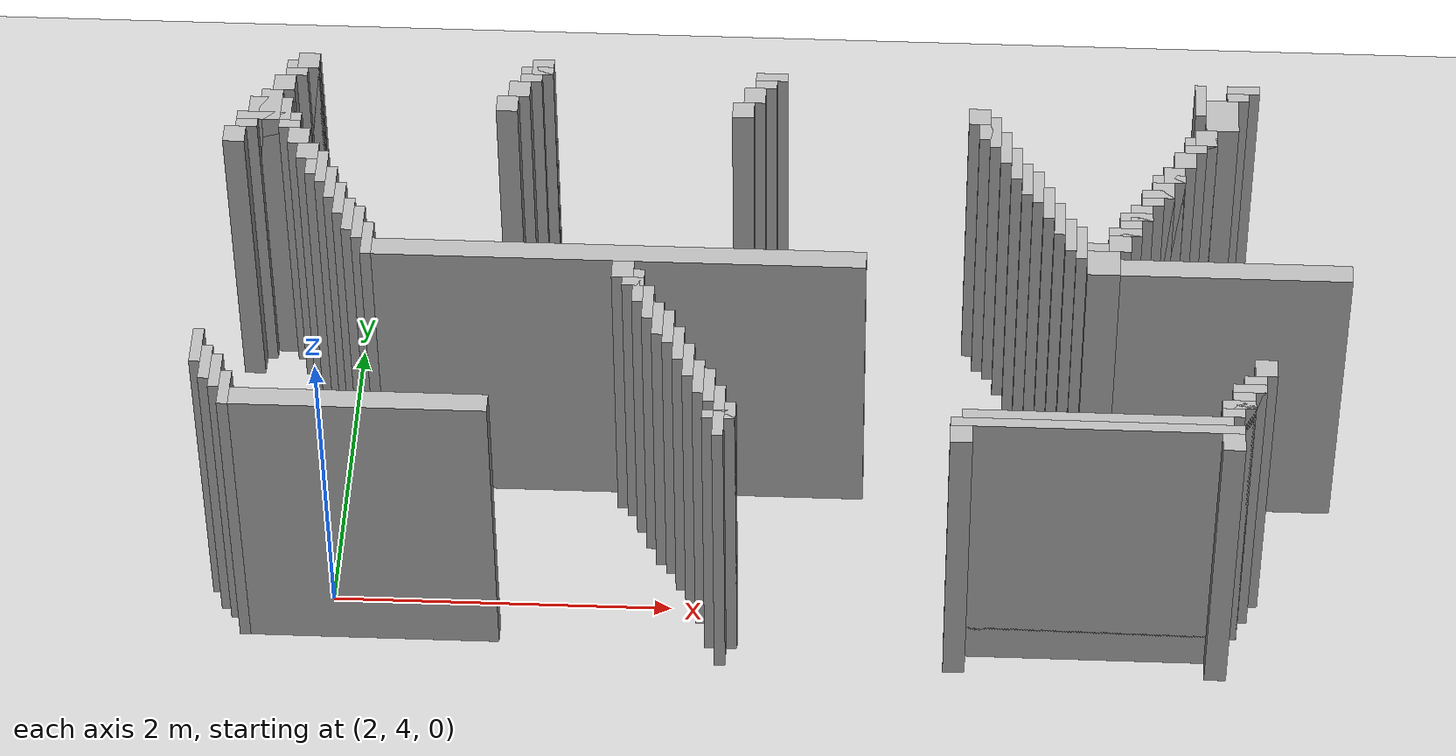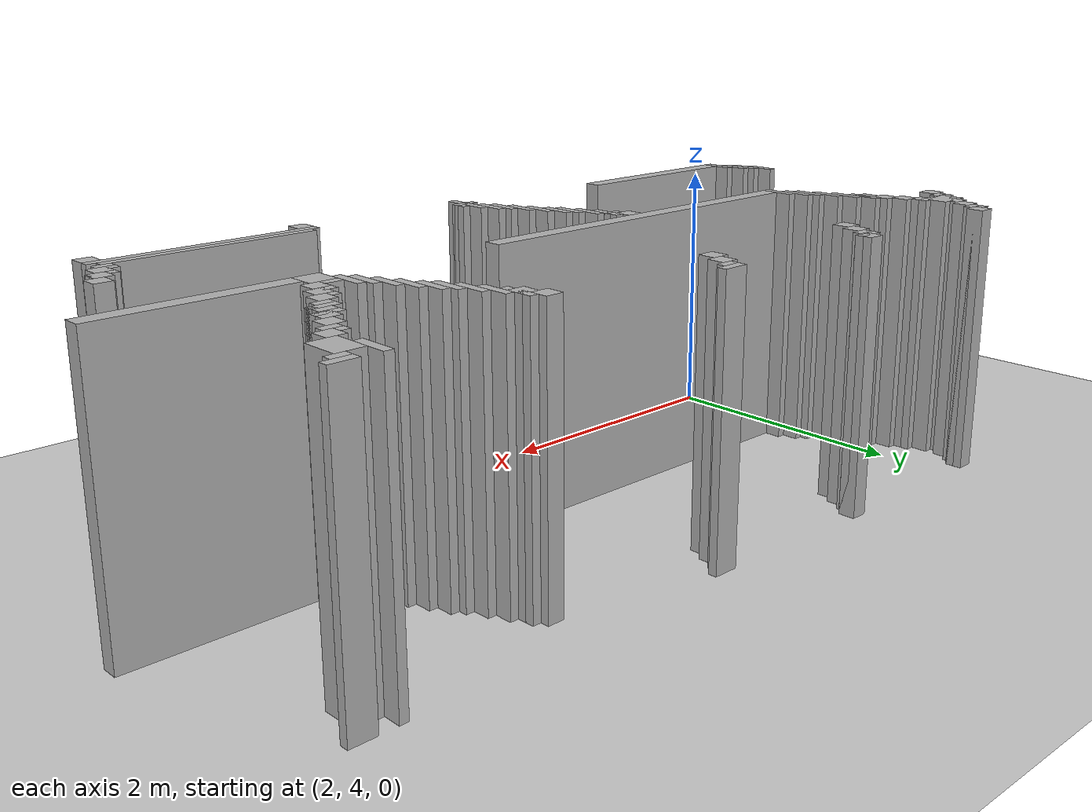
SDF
<sdf version="1.6">
 <world name="slam_world">
  <model name="ground_plane">
   <static>true</static>
   <link name="link">
    <collision name="collision">
     <geometry><plane><normal>0 0 1</normal><size>100 100</size></plane></geometry>
    </collision>
    <visual name="visual">
     <geometry><plane><normal>0 0 1</normal><size>100 100</size></plane></geometry>
     <material>
      <ambient>0.8 0.8 0.8 1</ambient>
      <diffuse>0.8 0.8 0.8 1</diffuse>
      <specular>0.8 0.8 0.8 1</specular>
     </material>
    </visual>
   </link>
  </model>
  <model name="wall_1665">
   <static>true</static>
   <pose>1.7234042553191489 6.51063829787234 1.0 0 0 0</pose>
   <link name="link">
    <collision name="collision">
     <geometry><box><size>0.1276595744680851 0.1276595744680851 2.0</size></box></geometry>
    </collision>
    <visual name="visual">
     <geometry><box><size>0.1276595744680851 0.1276595744680851 2.0</size></box></geometry>
     <material><ambient>0.5 0.5 0.5 1</ambient><diffuse>0.7 0.7 0.7 1</diffuse></material>
    </visual>
   </link>
  </model>
  <model name="wall_1666">
   <static>true</static>
   <pose>3.127659574468085 6.51063829787234 1.0 0 0 0</pose>
   <link name="link">
    <collision name="collision">
     <geometry><box><size>0.1276595744680851 0.1276595744680851 2.0</size></box></geometry>
    </collision>
    <visual name="visual">
     <geometry><box><size>0.1276595744680851 0.1276595744680851 2.0</size></box></geometry>
     <material><ambient>0.5 0.5 0.5 1</ambient><diffuse>0.7 0.7 0.7 1</diffuse></material>
    </visual>
   </link>
  </model>
  <model name="wall_1672">
   <static>true</static>
   <pose>1.6914893617021276 6.478723404255319 1.0 0 0 0</pose>
   <link name="link">
    <collision name="collision">
     <geometry><box><size>0.19148936170212766 0.06382978723404255 2.0</size></box></geometry>
    </collision>
    <visual name="visual">
     <geometry><box><size>0.19148936170212766 0.06382978723404255 2.0</size></box></geometry>
     <material><ambient>0.5 0.5 0.5 1</ambient><diffuse>0.7 0.7 0.7 1</diffuse></material>
    </visual>
   </link>
  </model>
  <model name="wall_1673">
   <static>true</static>
   <pose>3.095744680851064 6.478723404255319 1.0 0 0 0</pose>
   <link name="link">
    <collision name="collision">
     <geometry><box><size>0.19148936170212766 0.06382978723404255 2.0</size></box></geometry>
    </collision>
    <visual name="visual">
     <geometry><box><size>0.19148936170212766 0.06382978723404255 2.0</size></box></geometry>
     <material><ambient>0.5 0.5 0.5 1</ambient><diffuse>0.7 0.7 0.7 1</diffuse></material>
    </visual>
   </link>
  </model>
  <model name="wall_1674">
   <static>true</static>
   <pose>4.5 6.478723404255319 1.0 0 0 0</pose>
   <link name="link">
    <collision name="collision">
     <geometry><box><size>0.19148936170212766 0.06382978723404255 2.0</size></box></geometry>
    </collision>
    <visual name="visual">
     <geometry><box><size>0.19148936170212766 0.06382978723404255 2.0</size></box></geometry>
     <material><ambient>0.5 0.5 0.5 1</ambient><diffuse>0.7 0.7 0.7 1</diffuse></material>
    </visual>
   </link>
  </model>
  <model name="wall_1675">
   <static>true</static>
   <pose>7.053191489361701 6.382978723404255 1.0 0 0 0</pose>
   <link name="link">
    <collision name="collision">
     <geometry><box><size>0.06382978723404255 0.2553191489361702 2.0</size></box></geometry>
    </collision>
    <visual name="visual">
     <geometry><box><size>0.06382978723404255 0.2553191489361702 2.0</size></box></geometry>
     <material><ambient>0.5 0.5 0.5 1</ambient><diffuse>0.7 0.7 0.7 1</diffuse></material>
    </visual>
   </link>
  </model>
  <model name="wall_1676">
   <static>true</static>
   <pose>7.3085106382978715 6.478723404255319 1.0 0 0 0</pose>
   <link name="link">
    <collision name="collision">
     <geometry><box><size>0.19148936170212766 0.06382978723404255 2.0</size></box></geometry>
    </collision>
    <visual name="visual">
     <geometry><box><size>0.19148936170212766 0.06382978723404255 2.0</size></box></geometry>
     <material><ambient>0.5 0.5 0.5 1</ambient><diffuse>0.7 0.7 0.7 1</diffuse></material>
    </visual>
   </link>
  </model>
  <model name="wall_1681">
   <static>true</static>
   <pose>1.6595744680851063 6.414893617021276 1.0 0 0 0</pose>
   <link name="link">
    <collision name="collision">
     <geometry><box><size>0.1276595744680851 0.06382978723404255 2.0</size></box></geometry>
    </collision>
    <visual name="visual">
     <geometry><box><size>0.1276595744680851 0.06382978723404255 2.0</size></box></geometry>
     <material><ambient>0.5 0.5 0.5 1</ambient><diffuse>0.7 0.7 0.7 1</diffuse></material>
    </visual>
   </link>
  </model>
  <model name="wall_1682">
   <static>true</static>
   <pose>3.0638297872340425 6.414893617021276 1.0 0 0 0</pose>
   <link name="link">
    <collision name="collision">
     <geometry><box><size>0.1276595744680851 0.06382978723404255 2.0</size></box></geometry>
    </collision>
    <visual name="visual">
     <geometry><box><size>0.1276595744680851 0.06382978723404255 2.0</size></box></geometry>
     <material><ambient>0.5 0.5 0.5 1</ambient><diffuse>0.7 0.7 0.7 1</diffuse></material>
    </visual>
   </link>
  </model>
  <model name="wall_1683">
   <static>true</static>
   <pose>4.468085106382978 6.414893617021276 1.0 0 0 0</pose>
   <link name="link">
    <collision name="collision">
     <geometry><box><size>0.1276595744680851 0.06382978723404255 2.0</size></box></geometry>
    </collision>
    <visual name="visual">
     <geometry><box><size>0.1276595744680851 0.06382978723404255 2.0</size></box></geometry>
     <material><ambient>0.5 0.5 0.5 1</ambient><diffuse>0.7 0.7 0.7 1</diffuse></material>
    </visual>
   </link>
  </model>
  <model name="wall_1684">
   <static>true</static>
   <pose>7.276595744680851 6.414893617021276 1.0 0 0 0</pose>
   <link name="link">
    <collision name="collision">
     <geometry><box><size>0.1276595744680851 0.06382978723404255 2.0</size></box></geometry>
    </collision>
    <visual name="visual">
     <geometry><box><size>0.1276595744680851 0.06382978723404255 2.0</size></box></geometry>
     <material><ambient>0.5 0.5 0.5 1</ambient><diffuse>0.7 0.7 0.7 1</diffuse></material>
    </visual>
   </link>
  </model>
  <model name="wall_1688">
   <static>true</static>
   <pose>1.5957446808510638 6.319148936170213 1.0 0 0 0</pose>
   <link name="link">
    <collision name="collision">
     <geometry><box><size>0.1276595744680851 0.1276595744680851 2.0</size></box></geometry>
    </collision>
    <visual name="visual">
     <geometry><box><size>0.1276595744680851 0.1276595744680851 2.0</size></box></geometry>
     <material><ambient>0.5 0.5 0.5 1</ambient><diffuse>0.7 0.7 0.7 1</diffuse></material>
    </visual>
   </link>
  </model>
  <model name="wall_1689">
   <static>true</static>
   <pose>2.9999999999999996 6.319148936170213 1.0 0 0 0</pose>
   <link name="link">
    <collision name="collision">
     <geometry><box><size>0.1276595744680851 0.1276595744680851 2.0</size></box></geometry>
    </collision>
    <visual name="visual">
     <geometry><box><size>0.1276595744680851 0.1276595744680851 2.0</size></box></geometry>
     <material><ambient>0.5 0.5 0.5 1</ambient><diffuse>0.7 0.7 0.7 1</diffuse></material>
    </visual>
   </link>
  </model>
  <model name="wall_1690">
   <static>true</static>
   <pose>4.404255319148936 6.319148936170213 1.0 0 0 0</pose>
   <link name="link">
    <collision name="collision">
     <geometry><box><size>0.1276595744680851 0.1276595744680851 2.0</size></box></geometry>
    </collision>
    <visual name="visual">
     <geometry><box><size>0.1276595744680851 0.1276595744680851 2.0</size></box></geometry>
     <material><ambient>0.5 0.5 0.5 1</ambient><diffuse>0.7 0.7 0.7 1</diffuse></material>
    </visual>
   </link>
  </model>
  <model name="wall_1691">
   <static>true</static>
   <pose>7.180851063829786 6.25531914893617 1.0 0 0 0</pose>
   <link name="link">
    <collision name="collision">
     <geometry><box><size>0.19148936170212766 0.2553191489361702 2.0</size></box></geometry>
    </collision>
    <visual name="visual">
     <geometry><box><size>0.19148936170212766 0.2553191489361702 2.0</size></box></geometry>
     <material><ambient>0.5 0.5 0.5 1</ambient><diffuse>0.7 0.7 0.7 1</diffuse></material>
    </visual>
   </link>
  </model>
  <model name="wall_1695">
   <static>true</static>
   <pose>1.5319148936170213 6.127659574468085 1.0 0 0 0</pose>
   <link name="link">
    <collision name="collision">
     <geometry><box><size>0.1276595744680851 0.2553191489361702 2.0</size></box></geometry>
    </collision>
    <visual name="visual">
     <geometry><box><size>0.1276595744680851 0.2553191489361702 2.0</size></box></geometry>
     <material><ambient>0.5 0.5 0.5 1</ambient><diffuse>0.7 0.7 0.7 1</diffuse></material>
    </visual>
   </link>
  </model>
  <model name="wall_1696">
   <static>true</static>
   <pose>2.936170212765957 6.191489361702128 1.0 0 0 0</pose>
   <link name="link">
    <collision name="collision">
     <geometry><box><size>0.1276595744680851 0.1276595744680851 2.0</size></box></geometry>
    </collision>
    <visual name="visual">
     <geometry><box><size>0.1276595744680851 0.1276595744680851 2.0</size></box></geometry>
     <material><ambient>0.5 0.5 0.5 1</ambient><diffuse>0.7 0.7 0.7 1</diffuse></material>
    </visual>
   </link>
  </model>
  <model name="wall_1697">
   <static>true</static>
   <pose>4.340425531914893 6.191489361702128 1.0 0 0 0</pose>
   <link name="link">
    <collision name="collision">
     <geometry><box><size>0.1276595744680851 0.1276595744680851 2.0</size></box></geometry>
    </collision>
    <visual name="visual">
     <geometry><box><size>0.1276595744680851 0.1276595744680851 2.0</size></box></geometry>
     <material><ambient>0.5 0.5 0.5 1</ambient><diffuse>0.7 0.7 0.7 1</diffuse></material>
    </visual>
   </link>
  </model>
  <model name="wall_1698">
   <static>true</static>
   <pose>5.744680851063829 6.191489361702128 1.0 0 0 0</pose>
   <link name="link">
    <collision name="collision">
     <geometry><box><size>0.1276595744680851 0.1276595744680851 2.0</size></box></geometry>
    </collision>
    <visual name="visual">
     <geometry><box><size>0.1276595744680851 0.1276595744680851 2.0</size></box></geometry>
     <material><ambient>0.5 0.5 0.5 1</ambient><diffuse>0.7 0.7 0.7 1</diffuse></material>
    </visual>
   </link>
  </model>
  <model name="wall_1704">
   <static>true</static>
   <pose>1.5319148936170213 6.095744680851063 1.0 0 0 0</pose>
   <link name="link">
    <collision name="collision">
     <geometry><box><size>0.2553191489361702 0.19148936170212766 2.0</size></box></geometry>
    </collision>
    <visual name="visual">
     <geometry><box><size>0.2553191489361702 0.19148936170212766 2.0</size></box></geometry>
     <material><ambient>0.5 0.5 0.5 1</ambient><diffuse>0.7 0.7 0.7 1</diffuse></material>
    </visual>
   </link>
  </model>
  <model name="wall_1705">
   <static>true</static>
   <pose>5.840425531914893 6.063829787234042 1.0 0 0 0</pose>
   <link name="link">
    <collision name="collision">
     <geometry><box><size>0.06382978723404255 0.2553191489361702 2.0</size></box></geometry>
    </collision>
    <visual name="visual">
     <geometry><box><size>0.06382978723404255 0.2553191489361702 2.0</size></box></geometry>
     <material><ambient>0.5 0.5 0.5 1</ambient><diffuse>0.7 0.7 0.7 1</diffuse></material>
    </visual>
   </link>
  </model>
  <model name="wall_1711">
   <static>true</static>
   <pose>5.8085106382978715 6.063829787234042 1.0 0 0 0</pose>
   <link name="link">
    <collision name="collision">
     <geometry><box><size>0.1276595744680851 0.1276595744680851 2.0</size></box></geometry>
    </collision>
    <visual name="visual">
     <geometry><box><size>0.1276595744680851 0.1276595744680851 2.0</size></box></geometry>
     <material><ambient>0.5 0.5 0.5 1</ambient><diffuse>0.7 0.7 0.7 1</diffuse></material>
    </visual>
   </link>
  </model>
  <model name="wall_1712">
   <static>true</static>
   <pose>7.085106382978723 6.063829787234042 1.0 0 0 0</pose>
   <link name="link">
    <collision name="collision">
     <geometry><box><size>0.1276595744680851 0.1276595744680851 2.0</size></box></geometry>
    </collision>
    <visual name="visual">
     <geometry><box><size>0.1276595744680851 0.1276595744680851 2.0</size></box></geometry>
     <material><ambient>0.5 0.5 0.5 1</ambient><diffuse>0.7 0.7 0.7 1</diffuse></material>
    </visual>
   </link>
  </model>
  <model name="wall_1718">
   <static>true</static>
   <pose>1.5319148936170213 6.031914893617021 1.0 0 0 0</pose>
   <link name="link">
    <collision name="collision">
     <geometry><box><size>0.3829787234042553 0.06382978723404255 2.0</size></box></geometry>
    </collision>
    <visual name="visual">
     <geometry><box><size>0.3829787234042553 0.06382978723404255 2.0</size></box></geometry>
     <material><ambient>0.5 0.5 0.5 1</ambient><diffuse>0.7 0.7 0.7 1</diffuse></material>
    </visual>
   </link>
  </model>
  <model name="wall_1719">
   <static>true</static>
   <pose>5.904255319148936 5.936170212765957 1.0 0 0 0</pose>
   <link name="link">
    <collision name="collision">
     <geometry><box><size>0.06382978723404255 0.2553191489361702 2.0</size></box></geometry>
    </collision>
    <visual name="visual">
     <geometry><box><size>0.06382978723404255 0.2553191489361702 2.0</size></box></geometry>
     <material><ambient>0.5 0.5 0.5 1</ambient><diffuse>0.7 0.7 0.7 1</diffuse></material>
    </visual>
   </link>
  </model>
  <model name="wall_1720">
   <static>true</static>
   <pose>7.053191489361701 6.031914893617021 1.0 0 0 0</pose>
   <link name="link">
    <collision name="collision">
     <geometry><box><size>0.19148936170212766 0.06382978723404255 2.0</size></box></geometry>
    </collision>
    <visual name="visual">
     <geometry><box><size>0.19148936170212766 0.06382978723404255 2.0</size></box></geometry>
     <material><ambient>0.5 0.5 0.5 1</ambient><diffuse>0.7 0.7 0.7 1</diffuse></material>
    </visual>
   </link>
  </model>
  <model name="wall_1725">
   <static>true</static>
   <pose>1.404255319148936 5.968085106382978 1.0 0 0 0</pose>
   <link name="link">
    <collision name="collision">
     <geometry><box><size>0.1276595744680851 0.06382978723404255 2.0</size></box></geometry>
    </collision>
    <visual name="visual">
     <geometry><box><size>0.1276595744680851 0.06382978723404255 2.0</size></box></geometry>
     <material><ambient>0.5 0.5 0.5 1</ambient><diffuse>0.7 0.7 0.7 1</diffuse></material>
    </visual>
   </link>
  </model>
  <model name="wall_1726">
   <static>true</static>
   <pose>1.6595744680851063 5.968085106382978 1.0 0 0 0</pose>
   <link name="link">
    <collision name="collision">
     <geometry><box><size>0.1276595744680851 0.06382978723404255 2.0</size></box></geometry>
    </collision>
    <visual name="visual">
     <geometry><box><size>0.1276595744680851 0.06382978723404255 2.0</size></box></geometry>
     <material><ambient>0.5 0.5 0.5 1</ambient><diffuse>0.7 0.7 0.7 1</diffuse></material>
    </visual>
   </link>
  </model>
  <model name="wall_1727">
   <static>true</static>
   <pose>7.0212765957446805 5.968085106382978 1.0 0 0 0</pose>
   <link name="link">
    <collision name="collision">
     <geometry><box><size>0.1276595744680851 0.06382978723404255 2.0</size></box></geometry>
    </collision>
    <visual name="visual">
     <geometry><box><size>0.1276595744680851 0.06382978723404255 2.0</size></box></geometry>
     <material><ambient>0.5 0.5 0.5 1</ambient><diffuse>0.7 0.7 0.7 1</diffuse></material>
    </visual>
   </link>
  </model>
  <model name="wall_1732">
   <static>true</static>
   <pose>1.3404255319148934 5.872340425531914 1.0 0 0 0</pose>
   <link name="link">
    <collision name="collision">
     <geometry><box><size>0.1276595744680851 0.1276595744680851 2.0</size></box></geometry>
    </collision>
    <visual name="visual">
     <geometry><box><size>0.1276595744680851 0.1276595744680851 2.0</size></box></geometry>
     <material><ambient>0.5 0.5 0.5 1</ambient><diffuse>0.7 0.7 0.7 1</diffuse></material>
    </visual>
   </link>
  </model>
  <model name="wall_1733">
   <static>true</static>
   <pose>1.7234042553191489 5.872340425531914 1.0 0 0 0</pose>
   <link name="link">
    <collision name="collision">
     <geometry><box><size>0.1276595744680851 0.1276595744680851 2.0</size></box></geometry>
    </collision>
    <visual name="visual">
     <geometry><box><size>0.1276595744680851 0.1276595744680851 2.0</size></box></geometry>
     <material><ambient>0.5 0.5 0.5 1</ambient><diffuse>0.7 0.7 0.7 1</diffuse></material>
    </visual>
   </link>
  </model>
  <model name="wall_1734">
   <static>true</static>
   <pose>5.968085106382978 5.8085106382978715 1.0 0 0 0</pose>
   <link name="link">
    <collision name="collision">
     <geometry><box><size>0.06382978723404255 0.2553191489361702 2.0</size></box></geometry>
    </collision>
    <visual name="visual">
     <geometry><box><size>0.06382978723404255 0.2553191489361702 2.0</size></box></geometry>
     <material><ambient>0.5 0.5 0.5 1</ambient><diffuse>0.7 0.7 0.7 1</diffuse></material>
    </visual>
   </link>
  </model>
  <model name="wall_1735">
   <static>true</static>
   <pose>6.957446808510638 5.872340425531914 1.0 0 0 0</pose>
   <link name="link">
    <collision name="collision">
     <geometry><box><size>0.1276595744680851 0.1276595744680851 2.0</size></box></geometry>
    </collision>
    <visual name="visual">
     <geometry><box><size>0.1276595744680851 0.1276595744680851 2.0</size></box></geometry>
     <material><ambient>0.5 0.5 0.5 1</ambient><diffuse>0.7 0.7 0.7 1</diffuse></material>
    </visual>
   </link>
  </model>
  <model name="wall_1743">
   <static>true</static>
   <pose>1.7872340425531914 5.744680851063829 1.0 0 0 0</pose>
   <link name="link">
    <collision name="collision">
     <geometry><box><size>0.1276595744680851 0.1276595744680851 2.0</size></box></geometry>
    </collision>
    <visual name="visual">
     <geometry><box><size>0.1276595744680851 0.1276595744680851 2.0</size></box></geometry>
     <material><ambient>0.5 0.5 0.5 1</ambient><diffuse>0.7 0.7 0.7 1</diffuse></material>
    </visual>
   </link>
  </model>
  <model name="wall_1744">
   <static>true</static>
   <pose>6.031914893617021 5.680851063829786 1.0 0 0 0</pose>
   <link name="link">
    <collision name="collision">
     <geometry><box><size>0.06382978723404255 0.2553191489361702 2.0</size></box></geometry>
    </collision>
    <visual name="visual">
     <geometry><box><size>0.06382978723404255 0.2553191489361702 2.0</size></box></geometry>
     <material><ambient>0.5 0.5 0.5 1</ambient><diffuse>0.7 0.7 0.7 1</diffuse></material>
    </visual>
   </link>
  </model>
  <model name="wall_1745">
   <static>true</static>
   <pose>6.8936170212765955 5.744680851063829 1.0 0 0 0</pose>
   <link name="link">
    <collision name="collision">
     <geometry><box><size>0.1276595744680851 0.1276595744680851 2.0</size></box></geometry>
    </collision>
    <visual name="visual">
     <geometry><box><size>0.1276595744680851 0.1276595744680851 2.0</size></box></geometry>
     <material><ambient>0.5 0.5 0.5 1</ambient><diffuse>0.7 0.7 0.7 1</diffuse></material>
    </visual>
   </link>
  </model>
  <model name="wall_1753">
   <static>true</static>
   <pose>1.8829787234042552 5.617021276595744 1.0 0 0 0</pose>
   <link name="link">
    <collision name="collision">
     <geometry><box><size>0.06382978723404255 0.2553191489361702 2.0</size></box></geometry>
    </collision>
    <visual name="visual">
     <geometry><box><size>0.06382978723404255 0.2553191489361702 2.0</size></box></geometry>
     <material><ambient>0.5 0.5 0.5 1</ambient><diffuse>0.7 0.7 0.7 1</diffuse></material>
    </visual>
   </link>
  </model>
  <model name="wall_1754">
   <static>true</static>
   <pose>6.095744680851063 5.617021276595744 1.0 0 0 0</pose>
   <link name="link">
    <collision name="collision">
     <geometry><box><size>0.06382978723404255 0.2553191489361702 2.0</size></box></geometry>
    </collision>
    <visual name="visual">
     <geometry><box><size>0.06382978723404255 0.2553191489361702 2.0</size></box></geometry>
     <material><ambient>0.5 0.5 0.5 1</ambient><diffuse>0.7 0.7 0.7 1</diffuse></material>
    </visual>
   </link>
  </model>
  <model name="wall_1755">
   <static>true</static>
   <pose>6.861702127659574 5.712765957446808 1.0 0 0 0</pose>
   <link name="link">
    <collision name="collision">
     <geometry><box><size>0.19148936170212766 0.06382978723404255 2.0</size></box></geometry>
    </collision>
    <visual name="visual">
     <geometry><box><size>0.19148936170212766 0.06382978723404255 2.0</size></box></geometry>
     <material><ambient>0.5 0.5 0.5 1</ambient><diffuse>0.7 0.7 0.7 1</diffuse></material>
    </visual>
   </link>
  </model>
  <model name="wall_1762">
   <static>true</static>
   <pose>1.851063829787234 5.617021276595744 1.0 0 0 0</pose>
   <link name="link">
    <collision name="collision">
     <geometry><box><size>0.1276595744680851 0.1276595744680851 2.0</size></box></geometry>
    </collision>
    <visual name="visual">
     <geometry><box><size>0.1276595744680851 0.1276595744680851 2.0</size></box></geometry>
     <material><ambient>0.5 0.5 0.5 1</ambient><diffuse>0.7 0.7 0.7 1</diffuse></material>
    </visual>
   </link>
  </model>
  <model name="wall_1763">
   <static>true</static>
   <pose>6.829787234042553 5.617021276595744 1.0 0 0 0</pose>
   <link name="link">
    <collision name="collision">
     <geometry><box><size>0.1276595744680851 0.1276595744680851 2.0</size></box></geometry>
    </collision>
    <visual name="visual">
     <geometry><box><size>0.1276595744680851 0.1276595744680851 2.0</size></box></geometry>
     <material><ambient>0.5 0.5 0.5 1</ambient><diffuse>0.7 0.7 0.7 1</diffuse></material>
    </visual>
   </link>
  </model>
  <model name="wall_1769">
   <static>true</static>
   <pose>1.9468085106382977 5.489361702127659 1.0 0 0 0</pose>
   <link name="link">
    <collision name="collision">
     <geometry><box><size>0.06382978723404255 0.2553191489361702 2.0</size></box></geometry>
    </collision>
    <visual name="visual">
     <geometry><box><size>0.06382978723404255 0.2553191489361702 2.0</size></box></geometry>
     <material><ambient>0.5 0.5 0.5 1</ambient><diffuse>0.7 0.7 0.7 1</diffuse></material>
    </visual>
   </link>
  </model>
  <model name="wall_1770">
   <static>true</static>
   <pose>6.159574468085106 5.489361702127659 1.0 0 0 0</pose>
   <link name="link">
    <collision name="collision">
     <geometry><box><size>0.06382978723404255 0.2553191489361702 2.0</size></box></geometry>
    </collision>
    <visual name="visual">
     <geometry><box><size>0.06382978723404255 0.2553191489361702 2.0</size></box></geometry>
     <material><ambient>0.5 0.5 0.5 1</ambient><diffuse>0.7 0.7 0.7 1</diffuse></material>
    </visual>
   </link>
  </model>
  <model name="wall_1771">
   <static>true</static>
   <pose>6.797872340425531 5.585106382978723 1.0 0 0 0</pose>
   <link name="link">
    <collision name="collision">
     <geometry><box><size>0.19148936170212766 0.06382978723404255 2.0</size></box></geometry>
    </collision>
    <visual name="visual">
     <geometry><box><size>0.19148936170212766 0.06382978723404255 2.0</size></box></geometry>
     <material><ambient>0.5 0.5 0.5 1</ambient><diffuse>0.7 0.7 0.7 1</diffuse></material>
    </visual>
   </link>
  </model>
  <model name="wall_1778">
   <static>true</static>
   <pose>6.76595744680851 5.5212765957446805 1.0 0 0 0</pose>
   <link name="link">
    <collision name="collision">
     <geometry><box><size>0.1276595744680851 0.06382978723404255 2.0</size></box></geometry>
    </collision>
    <visual name="visual">
     <geometry><box><size>0.1276595744680851 0.06382978723404255 2.0</size></box></geometry>
     <material><ambient>0.5 0.5 0.5 1</ambient><diffuse>0.7 0.7 0.7 1</diffuse></material>
    </visual>
   </link>
  </model>
  <model name="wall_1783">
   <static>true</static>
   <pose>2.0106382978723403 5.361702127659574 1.0 0 0 0</pose>
   <link name="link">
    <collision name="collision">
     <geometry><box><size>0.06382978723404255 0.2553191489361702 2.0</size></box></geometry>
    </collision>
    <visual name="visual">
     <geometry><box><size>0.06382978723404255 0.2553191489361702 2.0</size></box></geometry>
     <material><ambient>0.5 0.5 0.5 1</ambient><diffuse>0.7 0.7 0.7 1</diffuse></material>
    </visual>
   </link>
  </model>
  <model name="wall_1784">
   <static>true</static>
   <pose>6.223404255319148 5.361702127659574 1.0 0 0 0</pose>
   <link name="link">
    <collision name="collision">
     <geometry><box><size>0.06382978723404255 0.2553191489361702 2.0</size></box></geometry>
    </collision>
    <visual name="visual">
     <geometry><box><size>0.06382978723404255 0.2553191489361702 2.0</size></box></geometry>
     <material><ambient>0.5 0.5 0.5 1</ambient><diffuse>0.7 0.7 0.7 1</diffuse></material>
    </visual>
   </link>
  </model>
  <model name="wall_1785">
   <static>true</static>
   <pose>6.702127659574468 5.425531914893616 1.0 0 0 0</pose>
   <link name="link">
    <collision name="collision">
     <geometry><box><size>0.1276595744680851 0.1276595744680851 2.0</size></box></geometry>
    </collision>
    <visual name="visual">
     <geometry><box><size>0.1276595744680851 0.1276595744680851 2.0</size></box></geometry>
     <material><ambient>0.5 0.5 0.5 1</ambient><diffuse>0.7 0.7 0.7 1</diffuse></material>
    </visual>
   </link>
  </model>
  <model name="wall_1792">
   <static>true</static>
   <pose>6.670212765957446 5.3936170212765955 1.0 0 0 0</pose>
   <link name="link">
    <collision name="collision">
     <geometry><box><size>0.19148936170212766 0.06382978723404255 2.0</size></box></geometry>
    </collision>
    <visual name="visual">
     <geometry><box><size>0.19148936170212766 0.06382978723404255 2.0</size></box></geometry>
     <material><ambient>0.5 0.5 0.5 1</ambient><diffuse>0.7 0.7 0.7 1</diffuse></material>
    </visual>
   </link>
  </model>
  <model name="wall_1797">
   <static>true</static>
   <pose>2.074468085106383 5.234042553191489 1.0 0 0 0</pose>
   <link name="link">
    <collision name="collision">
     <geometry><box><size>0.06382978723404255 0.2553191489361702 2.0</size></box></geometry>
    </collision>
    <visual name="visual">
     <geometry><box><size>0.06382978723404255 0.2553191489361702 2.0</size></box></geometry>
     <material><ambient>0.5 0.5 0.5 1</ambient><diffuse>0.7 0.7 0.7 1</diffuse></material>
    </visual>
   </link>
  </model>
  <model name="wall_1798">
   <static>true</static>
   <pose>6.287234042553191 5.234042553191489 1.0 0 0 0</pose>
   <link name="link">
    <collision name="collision">
     <geometry><box><size>0.06382978723404255 0.2553191489361702 2.0</size></box></geometry>
    </collision>
    <visual name="visual">
     <geometry><box><size>0.06382978723404255 0.2553191489361702 2.0</size></box></geometry>
     <material><ambient>0.5 0.5 0.5 1</ambient><diffuse>0.7 0.7 0.7 1</diffuse></material>
    </visual>
   </link>
  </model>
  <model name="wall_1799">
   <static>true</static>
   <pose>6.638297872340425 5.297872340425531 1.0 0 0 0</pose>
   <link name="link">
    <collision name="collision">
     <geometry><box><size>0.1276595744680851 0.1276595744680851 2.0</size></box></geometry>
    </collision>
    <visual name="visual">
     <geometry><box><size>0.1276595744680851 0.1276595744680851 2.0</size></box></geometry>
     <material><ambient>0.5 0.5 0.5 1</ambient><diffuse>0.7 0.7 0.7 1</diffuse></material>
    </visual>
   </link>
  </model>
  <model name="wall_1807">
   <static>true</static>
   <pose>2.1382978723404253 5.170212765957446 1.0 0 0 0</pose>
   <link name="link">
    <collision name="collision">
     <geometry><box><size>0.06382978723404255 0.2553191489361702 2.0</size></box></geometry>
    </collision>
    <visual name="visual">
     <geometry><box><size>0.06382978723404255 0.2553191489361702 2.0</size></box></geometry>
     <material><ambient>0.5 0.5 0.5 1</ambient><diffuse>0.7 0.7 0.7 1</diffuse></material>
    </visual>
   </link>
  </model>
  <model name="wall_1808">
   <static>true</static>
   <pose>6.3510638297872335 5.170212765957446 1.0 0 0 0</pose>
   <link name="link">
    <collision name="collision">
     <geometry><box><size>0.06382978723404255 0.2553191489361702 2.0</size></box></geometry>
    </collision>
    <visual name="visual">
     <geometry><box><size>0.06382978723404255 0.2553191489361702 2.0</size></box></geometry>
     <material><ambient>0.5 0.5 0.5 1</ambient><diffuse>0.7 0.7 0.7 1</diffuse></material>
    </visual>
   </link>
  </model>
  <model name="wall_1809">
   <static>true</static>
   <pose>6.606382978723404 5.26595744680851 1.0 0 0 0</pose>
   <link name="link">
    <collision name="collision">
     <geometry><box><size>0.19148936170212766 0.06382978723404255 2.0</size></box></geometry>
    </collision>
    <visual name="visual">
     <geometry><box><size>0.19148936170212766 0.06382978723404255 2.0</size></box></geometry>
     <material><ambient>0.5 0.5 0.5 1</ambient><diffuse>0.7 0.7 0.7 1</diffuse></material>
    </visual>
   </link>
  </model>
  <model name="wall_1816">
   <static>true</static>
   <pose>6.574468085106383 5.170212765957446 1.0 0 0 0</pose>
   <link name="link">
    <collision name="collision">
     <geometry><box><size>0.1276595744680851 0.1276595744680851 2.0</size></box></geometry>
    </collision>
    <visual name="visual">
     <geometry><box><size>0.1276595744680851 0.1276595744680851 2.0</size></box></geometry>
     <material><ambient>0.5 0.5 0.5 1</ambient><diffuse>0.7 0.7 0.7 1</diffuse></material>
    </visual>
   </link>
  </model>
  <model name="wall_1820">
   <static>true</static>
   <pose>2.202127659574468 5.042553191489361 1.0 0 0 0</pose>
   <link name="link">
    <collision name="collision">
     <geometry><box><size>0.06382978723404255 0.2553191489361702 2.0</size></box></geometry>
    </collision>
    <visual name="visual">
     <geometry><box><size>0.06382978723404255 0.2553191489361702 2.0</size></box></geometry>
     <material><ambient>0.5 0.5 0.5 1</ambient><diffuse>0.7 0.7 0.7 1</diffuse></material>
    </visual>
   </link>
  </model>
  <model name="wall_1821">
   <static>true</static>
   <pose>6.51063829787234 5.138297872340425 1.0 0 0 0</pose>
   <link name="link">
    <collision name="collision">
     <geometry><box><size>0.2553191489361702 0.06382978723404255 2.0</size></box></geometry>
    </collision>
    <visual name="visual">
     <geometry><box><size>0.2553191489361702 0.06382978723404255 2.0</size></box></geometry>
     <material><ambient>0.5 0.5 0.5 1</ambient><diffuse>0.7 0.7 0.7 1</diffuse></material>
    </visual>
   </link>
  </model>
  <model name="wall_1827">
   <static>true</static>
   <pose>6.478723404255319 5.01063829787234 1.0 0 0 0</pose>
   <link name="link">
    <collision name="collision">
     <geometry><box><size>0.19148936170212766 0.19148936170212766 2.0</size></box></geometry>
    </collision>
    <visual name="visual">
     <geometry><box><size>0.19148936170212766 0.19148936170212766 2.0</size></box></geometry>
     <material><ambient>0.5 0.5 0.5 1</ambient><diffuse>0.7 0.7 0.7 1</diffuse></material>
    </visual>
   </link>
  </model>
  <model name="wall_1831">
   <static>true</static>
   <pose>3.6702127659574466 4.978723404255319 1.0 0 0 0</pose>
   <link name="link">
    <collision name="collision">
     <geometry><box><size>2.8723404255319145 0.1276595744680851 2.0</size></box></geometry>
    </collision>
    <visual name="visual">
     <geometry><box><size>2.8723404255319145 0.1276595744680851 2.0</size></box></geometry>
     <material><ambient>0.5 0.5 0.5 1</ambient><diffuse>0.7 0.7 0.7 1</diffuse></material>
    </visual>
   </link>
  </model>
  <model name="wall_1832">
   <static>true</static>
   <pose>7.244680851063829 4.978723404255319 1.0 0 0 0</pose>
   <link name="link">
    <collision name="collision">
     <geometry><box><size>1.3404255319148934 0.1276595744680851 2.0</size></box></geometry>
    </collision>
    <visual name="visual">
     <geometry><box><size>1.3404255319148934 0.1276595744680851 2.0</size></box></geometry>
     <material><ambient>0.5 0.5 0.5 1</ambient><diffuse>0.7 0.7 0.7 1</diffuse></material>
    </visual>
   </link>
  </model>
  <model name="wall_1839">
   <static>true</static>
   <pose>3.702127659574468 4.8510638297872335 1.0 0 0 0</pose>
   <link name="link">
    <collision name="collision">
     <geometry><box><size>0.1276595744680851 0.1276595744680851 2.0</size></box></geometry>
    </collision>
    <visual name="visual">
     <geometry><box><size>0.1276595744680851 0.1276595744680851 2.0</size></box></geometry>
     <material><ambient>0.5 0.5 0.5 1</ambient><diffuse>0.7 0.7 0.7 1</diffuse></material>
    </visual>
   </link>
  </model>
  <model name="wall_1844">
   <static>true</static>
   <pose>3.7978723404255317 4.723404255319148 1.0 0 0 0</pose>
   <link name="link">
    <collision name="collision">
     <geometry><box><size>0.06382978723404255 0.2553191489361702 2.0</size></box></geometry>
    </collision>
    <visual name="visual">
     <geometry><box><size>0.06382978723404255 0.2553191489361702 2.0</size></box></geometry>
     <material><ambient>0.5 0.5 0.5 1</ambient><diffuse>0.7 0.7 0.7 1</diffuse></material>
    </visual>
   </link>
  </model>
  <model name="wall_1850">
   <static>true</static>
   <pose>3.7659574468085104 4.75531914893617 1.0 0 0 0</pose>
   <link name="link">
    <collision name="collision">
     <geometry><box><size>0.1276595744680851 0.06382978723404255 2.0</size></box></geometry>
    </collision>
    <visual name="visual">
     <geometry><box><size>0.1276595744680851 0.06382978723404255 2.0</size></box></geometry>
     <material><ambient>0.5 0.5 0.5 1</ambient><diffuse>0.7 0.7 0.7 1</diffuse></material>
    </visual>
   </link>
  </model>
  <model name="wall_1856">
   <static>true</static>
   <pose>3.861702127659574 4.595744680851063 1.0 0 0 0</pose>
   <link name="link">
    <collision name="collision">
     <geometry><box><size>0.06382978723404255 0.2553191489361702 2.0</size></box></geometry>
    </collision>
    <visual name="visual">
     <geometry><box><size>0.06382978723404255 0.2553191489361702 2.0</size></box></geometry>
     <material><ambient>0.5 0.5 0.5 1</ambient><diffuse>0.7 0.7 0.7 1</diffuse></material>
    </visual>
   </link>
  </model>
  <model name="wall_1862">
   <static>true</static>
   <pose>3.9255319148936167 4.468085106382978 1.0 0 0 0</pose>
   <link name="link">
    <collision name="collision">
     <geometry><box><size>0.06382978723404255 0.2553191489361702 2.0</size></box></geometry>
    </collision>
    <visual name="visual">
     <geometry><box><size>0.06382978723404255 0.2553191489361702 2.0</size></box></geometry>
     <material><ambient>0.5 0.5 0.5 1</ambient><diffuse>0.7 0.7 0.7 1</diffuse></material>
    </visual>
   </link>
  </model>
  <model name="wall_1868">
   <static>true</static>
   <pose>3.9893617021276593 4.404255319148936 1.0 0 0 0</pose>
   <link name="link">
    <collision name="collision">
     <geometry><box><size>0.06382978723404255 0.2553191489361702 2.0</size></box></geometry>
    </collision>
    <visual name="visual">
     <geometry><box><size>0.06382978723404255 0.2553191489361702 2.0</size></box></geometry>
     <material><ambient>0.5 0.5 0.5 1</ambient><diffuse>0.7 0.7 0.7 1</diffuse></material>
    </visual>
   </link>
  </model>
  <model name="wall_1878">
   <static>true</static>
   <pose>4.053191489361701 4.276595744680851 1.0 0 0 0</pose>
   <link name="link">
    <collision name="collision">
     <geometry><box><size>0.06382978723404255 0.2553191489361702 2.0</size></box></geometry>
    </collision>
    <visual name="visual">
     <geometry><box><size>0.06382978723404255 0.2553191489361702 2.0</size></box></geometry>
     <material><ambient>0.5 0.5 0.5 1</ambient><diffuse>0.7 0.7 0.7 1</diffuse></material>
    </visual>
   </link>
  </model>
  <model name="wall_1886">
   <static>true</static>
   <pose>1.3085106382978722 4.148936170212766 1.0 0 0 0</pose>
   <link name="link">
    <collision name="collision">
     <geometry><box><size>0.06382978723404255 0.2553191489361702 2.0</size></box></geometry>
    </collision>
    <visual name="visual">
     <geometry><box><size>0.06382978723404255 0.2553191489361702 2.0</size></box></geometry>
     <material><ambient>0.5 0.5 0.5 1</ambient><diffuse>0.7 0.7 0.7 1</diffuse></material>
    </visual>
   </link>
  </model>
  <model name="wall_1887">
   <static>true</static>
   <pose>4.117021276595745 4.148936170212766 1.0 0 0 0</pose>
   <link name="link">
    <collision name="collision">
     <geometry><box><size>0.06382978723404255 0.2553191489361702 2.0</size></box></geometry>
    </collision>
    <visual name="visual">
     <geometry><box><size>0.06382978723404255 0.2553191489361702 2.0</size></box></geometry>
     <material><ambient>0.5 0.5 0.5 1</ambient><diffuse>0.7 0.7 0.7 1</diffuse></material>
    </visual>
   </link>
  </model>
  <model name="wall_1888">
   <static>true</static>
   <pose>7.404255319148936 4.212765957446808 1.0 0 0 0</pose>
   <link name="link">
    <collision name="collision">
     <geometry><box><size>0.1276595744680851 0.1276595744680851 2.0</size></box></geometry>
    </collision>
    <visual name="visual">
     <geometry><box><size>0.1276595744680851 0.1276595744680851 2.0</size></box></geometry>
     <material><ambient>0.5 0.5 0.5 1</ambient><diffuse>0.7 0.7 0.7 1</diffuse></material>
    </visual>
   </link>
  </model>
  <model name="wall_1892">
   <static>true</static>
   <pose>1.3723404255319147 4.0212765957446805 1.0 0 0 0</pose>
   <link name="link">
    <collision name="collision">
     <geometry><box><size>0.06382978723404255 0.2553191489361702 2.0</size></box></geometry>
    </collision>
    <visual name="visual">
     <geometry><box><size>0.06382978723404255 0.2553191489361702 2.0</size></box></geometry>
     <material><ambient>0.5 0.5 0.5 1</ambient><diffuse>0.7 0.7 0.7 1</diffuse></material>
    </visual>
   </link>
  </model>
  <model name="wall_1893">
   <static>true</static>
   <pose>4.180851063829787 4.0212765957446805 1.0 0 0 0</pose>
   <link name="link">
    <collision name="collision">
     <geometry><box><size>0.06382978723404255 0.2553191489361702 2.0</size></box></geometry>
    </collision>
    <visual name="visual">
     <geometry><box><size>0.06382978723404255 0.2553191489361702 2.0</size></box></geometry>
     <material><ambient>0.5 0.5 0.5 1</ambient><diffuse>0.7 0.7 0.7 1</diffuse></material>
    </visual>
   </link>
  </model>
  <model name="wall_1894">
   <static>true</static>
   <pose>7.340425531914893 4.085106382978723 1.0 0 0 0</pose>
   <link name="link">
    <collision name="collision">
     <geometry><box><size>0.1276595744680851 0.1276595744680851 2.0</size></box></geometry>
    </collision>
    <visual name="visual">
     <geometry><box><size>0.1276595744680851 0.1276595744680851 2.0</size></box></geometry>
     <material><ambient>0.5 0.5 0.5 1</ambient><diffuse>0.7 0.7 0.7 1</diffuse></material>
    </visual>
   </link>
  </model>
  <model name="wall_1898">
   <static>true</static>
   <pose>1.4361702127659572 3.957446808510638 1.0 0 0 0</pose>
   <link name="link">
    <collision name="collision">
     <geometry><box><size>0.06382978723404255 0.2553191489361702 2.0</size></box></geometry>
    </collision>
    <visual name="visual">
     <geometry><box><size>0.06382978723404255 0.2553191489361702 2.0</size></box></geometry>
     <material><ambient>0.5 0.5 0.5 1</ambient><diffuse>0.7 0.7 0.7 1</diffuse></material>
    </visual>
   </link>
  </model>
  <model name="wall_1899">
   <static>true</static>
   <pose>4.24468085106383 3.957446808510638 1.0 0 0 0</pose>
   <link name="link">
    <collision name="collision">
     <geometry><box><size>0.06382978723404255 0.2553191489361702 2.0</size></box></geometry>
    </collision>
    <visual name="visual">
     <geometry><box><size>0.06382978723404255 0.2553191489361702 2.0</size></box></geometry>
     <material><ambient>0.5 0.5 0.5 1</ambient><diffuse>0.7 0.7 0.7 1</diffuse></material>
    </visual>
   </link>
  </model>
  <model name="wall_1900">
   <static>true</static>
   <pose>7.3085106382978715 4.053191489361701 1.0 0 0 0</pose>
   <link name="link">
    <collision name="collision">
     <geometry><box><size>0.19148936170212766 0.06382978723404255 2.0</size></box></geometry>
    </collision>
    <visual name="visual">
     <geometry><box><size>0.19148936170212766 0.06382978723404255 2.0</size></box></geometry>
     <material><ambient>0.5 0.5 0.5 1</ambient><diffuse>0.7 0.7 0.7 1</diffuse></material>
    </visual>
   </link>
  </model>
  <model name="wall_1904">
   <static>true</static>
   <pose>7.276595744680851 3.957446808510638 1.0 0 0 0</pose>
   <link name="link">
    <collision name="collision">
     <geometry><box><size>0.1276595744680851 0.1276595744680851 2.0</size></box></geometry>
    </collision>
    <visual name="visual">
     <geometry><box><size>0.1276595744680851 0.1276595744680851 2.0</size></box></geometry>
     <material><ambient>0.5 0.5 0.5 1</ambient><diffuse>0.7 0.7 0.7 1</diffuse></material>
    </visual>
   </link>
  </model>
  <model name="wall_1907">
   <static>true</static>
   <pose>1.4999999999999998 3.829787234042553 1.0 0 0 0</pose>
   <link name="link">
    <collision name="collision">
     <geometry><box><size>0.06382978723404255 0.2553191489361702 2.0</size></box></geometry>
    </collision>
    <visual name="visual">
     <geometry><box><size>0.06382978723404255 0.2553191489361702 2.0</size></box></geometry>
     <material><ambient>0.5 0.5 0.5 1</ambient><diffuse>0.7 0.7 0.7 1</diffuse></material>
    </visual>
   </link>
  </model>
  <model name="wall_1908">
   <static>true</static>
   <pose>4.308510638297872 3.7659574468085104 1.0 0 0 0</pose>
   <link name="link">
    <collision name="collision">
     <geometry><box><size>0.06382978723404255 0.3829787234042553 2.0</size></box></geometry>
    </collision>
    <visual name="visual">
     <geometry><box><size>0.06382978723404255 0.3829787234042553 2.0</size></box></geometry>
     <material><ambient>0.5 0.5 0.5 1</ambient><diffuse>0.7 0.7 0.7 1</diffuse></material>
    </visual>
   </link>
  </model>
  <model name="wall_1909">
   <static>true</static>
   <pose>7.244680851063829 3.9255319148936167 1.0 0 0 0</pose>
   <link name="link">
    <collision name="collision">
     <geometry><box><size>0.19148936170212766 0.06382978723404255 2.0</size></box></geometry>
    </collision>
    <visual name="visual">
     <geometry><box><size>0.19148936170212766 0.06382978723404255 2.0</size></box></geometry>
     <material><ambient>0.5 0.5 0.5 1</ambient><diffuse>0.7 0.7 0.7 1</diffuse></material>
    </visual>
   </link>
  </model>
  <model name="wall_1913">
   <static>true</static>
   <pose>7.212765957446808 3.861702127659574 1.0 0 0 0</pose>
   <link name="link">
    <collision name="collision">
     <geometry><box><size>0.1276595744680851 0.06382978723404255 2.0</size></box></geometry>
    </collision>
    <visual name="visual">
     <geometry><box><size>0.1276595744680851 0.06382978723404255 2.0</size></box></geometry>
     <material><ambient>0.5 0.5 0.5 1</ambient><diffuse>0.7 0.7 0.7 1</diffuse></material>
    </visual>
   </link>
  </model>
  <model name="wall_1916">
   <static>true</static>
   <pose>2.2659574468085104 3.7659574468085104 1.0 0 0 0</pose>
   <link name="link">
    <collision name="collision">
     <geometry><box><size>1.4680851063829785 0.1276595744680851 2.0</size></box></geometry>
    </collision>
    <visual name="visual">
     <geometry><box><size>1.4680851063829785 0.1276595744680851 2.0</size></box></geometry>
     <material><ambient>0.5 0.5 0.5 1</ambient><diffuse>0.7 0.7 0.7 1</diffuse></material>
    </visual>
   </link>
  </model>
  <model name="wall_1917">
   <static>true</static>
   <pose>4.372340425531915 3.7659574468085104 1.0 0 0 0</pose>
   <link name="link">
    <collision name="collision">
     <geometry><box><size>0.06382978723404255 0.1276595744680851 2.0</size></box></geometry>
    </collision>
    <visual name="visual">
     <geometry><box><size>0.06382978723404255 0.1276595744680851 2.0</size></box></geometry>
     <material><ambient>0.5 0.5 0.5 1</ambient><diffuse>0.7 0.7 0.7 1</diffuse></material>
    </visual>
   </link>
  </model>
  <model name="wall_1918">
   <static>true</static>
   <pose>6.446808510638298 3.7659574468085104 1.0 0 0 0</pose>
   <link name="link">
    <collision name="collision">
     <geometry><box><size>1.5319148936170213 0.1276595744680851 2.0</size></box></geometry>
    </collision>
    <visual name="visual">
     <geometry><box><size>1.5319148936170213 0.1276595744680851 2.0</size></box></geometry>
     <material><ambient>0.5 0.5 0.5 1</ambient><diffuse>0.7 0.7 0.7 1</diffuse></material>
    </visual>
   </link>
  </model>
  <model name="wall_1924">
   <static>true</static>
   <pose>4.308510638297872 3.734042553191489 1.0 0 0 0</pose>
   <link name="link">
    <collision name="collision">
     <geometry><box><size>0.19148936170212766 0.06382978723404255 2.0</size></box></geometry>
    </collision>
    <visual name="visual">
     <geometry><box><size>0.19148936170212766 0.06382978723404255 2.0</size></box></geometry>
     <material><ambient>0.5 0.5 0.5 1</ambient><diffuse>0.7 0.7 0.7 1</diffuse></material>
    </visual>
   </link>
  </model>
  <model name="wall_1925">
   <static>true</static>
   <pose>6.446808510638298 3.734042553191489 1.0 0 0 0</pose>
   <link name="link">
    <collision name="collision">
     <geometry><box><size>1.6595744680851063 0.06382978723404255 2.0</size></box></geometry>
    </collision>
    <visual name="visual">
     <geometry><box><size>1.6595744680851063 0.06382978723404255 2.0</size></box></geometry>
     <material><ambient>0.5 0.5 0.5 1</ambient><diffuse>0.7 0.7 0.7 1</diffuse></material>
    </visual>
   </link>
  </model>
  <model name="wall_1932">
   <static>true</static>
   <pose>5.680851063829786 3.6382978723404253 1.0 0 0 0</pose>
   <link name="link">
    <collision name="collision">
     <geometry><box><size>0.1276595744680851 0.1276595744680851 2.0</size></box></geometry>
    </collision>
    <visual name="visual">
     <geometry><box><size>0.1276595744680851 0.1276595744680851 2.0</size></box></geometry>
     <material><ambient>0.5 0.5 0.5 1</ambient><diffuse>0.7 0.7 0.7 1</diffuse></material>
    </visual>
   </link>
  </model>
  <model name="wall_1933">
   <static>true</static>
   <pose>7.212765957446808 3.6382978723404253 1.0 0 0 0</pose>
   <link name="link">
    <collision name="collision">
     <geometry><box><size>0.1276595744680851 0.1276595744680851 2.0</size></box></geometry>
    </collision>
    <visual name="visual">
     <geometry><box><size>0.1276595744680851 0.1276595744680851 2.0</size></box></geometry>
     <material><ambient>0.5 0.5 0.5 1</ambient><diffuse>0.7 0.7 0.7 1</diffuse></material>
    </visual>
   </link>
  </model>
 </world>
</sdf>
